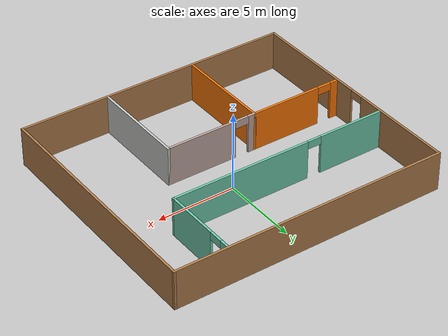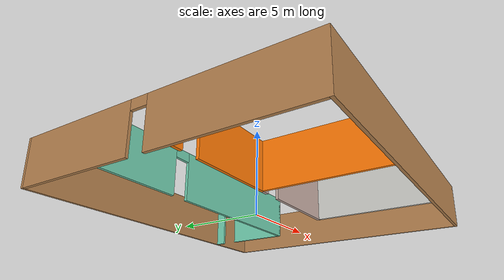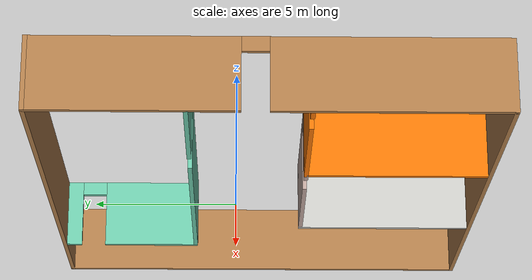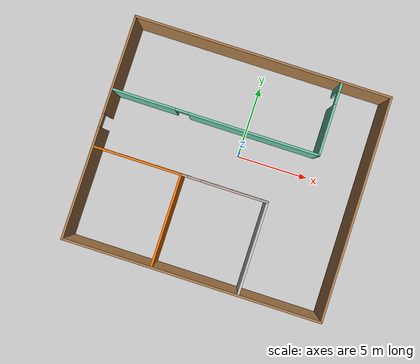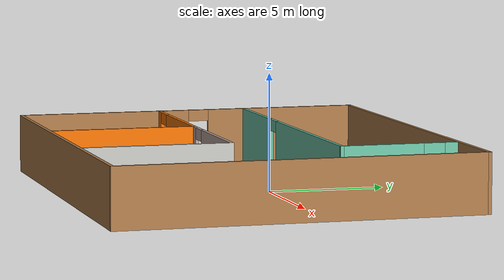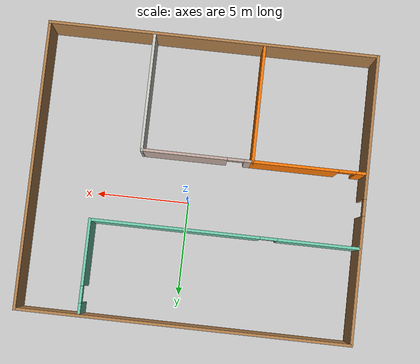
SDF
<?xml version='1.0'?>
<sdf version='1.6'>
  <model name='building'>
    <pose frame=''>-0.446 -1.0545 0 0 -0 0</pose>
    <link name='Wall_42'>
      <pose frame=''>-8.8 0 0 0 0 -1.5708</pose>
      <visual name='Wall_42_Visual_0'>
        <pose frame=''>-4.30585 0 1.25 0 -0 0</pose>
        <geometry>
          <box>
            <size>6.83131 0.15 2.5</size>
          </box>
        </geometry>
        <material>
          <script>
            <uri>file://media/materials/scripts/gazebo.material</uri>
            <name>Gazebo/Wood</name>
          </script>
          <ambient>1 1 1 1</ambient>
        </material>
        <meta>
          <layer>0</layer>
        </meta>
      </visual>
      <collision name='Wall_42_Collision_0'>
        <geometry>
          <box>
            <size>6.83131 0.15 2.5</size>
          </box>
        </geometry>
        <pose frame=''>-4.30585 0 1.25 0 -0 0</pose>
      </collision>
      <visual name='Wall_42_Visual_1'>
        <pose frame=''>3.86565 0 1.25 0 -0 0</pose>
        <geometry>
          <box>
            <size>7.71169 0.15 2.5</size>
          </box>
        </geometry>
        <material>
          <script>
            <uri>file://media/materials/scripts/gazebo.material</uri>
            <name>Gazebo/Wood</name>
          </script>
          <ambient>1 1 1 1</ambient>
        </material>
        <meta>
          <layer>0</layer>
        </meta>
      </visual>
      <collision name='Wall_42_Collision_1'>
        <geometry>
          <box>
            <size>7.71169 0.15 2.5</size>
          </box>
        </geometry>
        <pose frame=''>3.86565 0 1.25 0 -0 0</pose>
      </collision>
      <visual name='Wall_42_Visual_2'>
        <pose frame=''>-0.440192 0 2.25 0 -0 0</pose>
        <geometry>
          <box>
            <size>0.9 0.15 0.5</size>
          </box>
        </geometry>
        <material>
          <script>
            <uri>file://media/materials/scripts/gazebo.material</uri>
            <name>Gazebo/Wood</name>
          </script>
          <ambient>1 1 1 1</ambient>
        </material>
        <meta>
          <layer>0</layer>
        </meta>
      </visual>
      <collision name='Wall_42_Collision_2'>
        <geometry>
          <box>
            <size>0.9 0.15 0.5</size>
          </box>
        </geometry>
        <pose frame=''>-0.440192 0 2.25 0 -0 0</pose>
      </collision>
    </link>
    <link name='Wall_43'>
      <collision name='Wall_43_Collision'>
        <geometry>
          <box>
            <size>17.75 0.15 2.5</size>
          </box>
        </geometry>
        <pose frame=''>0 0 1.25 0 -0 0</pose>
      </collision>
      <visual name='Wall_43_Visual'>
        <pose frame=''>0 0 1.25 0 -0 0</pose>
        <geometry>
          <box>
            <size>17.75 0.15 2.5</size>
          </box>
        </geometry>
        <material>
          <script>
            <uri>file://media/materials/scripts/gazebo.material</uri>
            <name>Gazebo/Wood</name>
          </script>
          <ambient>1 1 1 1</ambient>
        </material>
        <meta>
          <layer>0</layer>
        </meta>
      </visual>
      <pose frame=''>0 -7.6465 0 0 -0 0</pose>
    </link>
    <link name='Wall_44'>
      <collision name='Wall_44_Collision'>
        <geometry>
          <box>
            <size>15.443 0.15 2.5</size>
          </box>
        </geometry>
        <pose frame=''>0 0 1.25 0 -0 0</pose>
      </collision>
      <visual name='Wall_44_Visual'>
        <pose frame=''>0 0 1.25 0 -0 0</pose>
        <geometry>
          <box>
            <size>15.443 0.15 2.5</size>
          </box>
        </geometry>
        <material>
          <script>
            <uri>file://media/materials/scripts/gazebo.material</uri>
            <name>Gazebo/Wood</name>
          </script>
          <ambient>1 1 1 1</ambient>
        </material>
        <meta>
          <layer>0</layer>
        </meta>
      </visual>
      <pose frame=''>8.8 0 0 0 -0 1.5708</pose>
    </link>
    <link name='Wall_45'>
      <collision name='Wall_45_Collision'>
        <geometry>
          <box>
            <size>17.75 0.15 2.5</size>
          </box>
        </geometry>
        <pose frame=''>0 0 1.25 0 -0 0</pose>
      </collision>
      <visual name='Wall_45_Visual'>
        <pose frame=''>0 0 1.25 0 -0 0</pose>
        <geometry>
          <box>
            <size>17.75 0.15 2.5</size>
          </box>
        </geometry>
        <material>
          <script>
            <uri>file://media/materials/scripts/gazebo.material</uri>
            <name>Gazebo/Wood</name>
          </script>
          <ambient>1 1 1 1</ambient>
        </material>
        <meta>
          <layer>0</layer>
        </meta>
      </visual>
      <pose frame=''>0 7.6465 0 0 -0 3.14159</pose>
    </link>
    <link name='Wall_50'>
      <pose frame=''>-1.647 2.6095 0 0 -0 0</pose>
      <visual name='Wall_50_Visual_0'>
        <pose frame=''>-4.97412 0 1.25 0 -0 0</pose>
        <geometry>
          <box>
            <size>4.36782 0.15 2.5</size>
          </box>
        </geometry>
        <material>
          <script>
            <uri>file://media/materials/scripts/gazebo.material</uri>
            <name>Gazebo/Grey</name>
          </script>
          <ambient>0.435294 0.796078 0.67451 1</ambient>
        </material>
        <meta>
          <layer>0</layer>
        </meta>
      </visual>
      <collision name='Wall_50_Collision_0'>
        <geometry>
          <box>
            <size>4.36782 0.15 2.5</size>
          </box>
        </geometry>
        <pose frame=''>-4.97412 0 1.25 0 -0 0</pose>
      </collision>
      <visual name='Wall_50_Visual_1'>
        <pose frame=''>2.63391 0 1.25 0 -0 0</pose>
        <geometry>
          <box>
            <size>9.04824 0.15 2.5</size>
          </box>
        </geometry>
        <material>
          <script>
            <uri>file://media/materials/scripts/gazebo.material</uri>
            <name>Gazebo/Grey</name>
          </script>
          <ambient>0.435294 0.796078 0.67451 1</ambient>
        </material>
        <meta>
          <layer>0</layer>
        </meta>
      </visual>
      <collision name='Wall_50_Collision_1'>
        <geometry>
          <box>
            <size>9.04824 0.15 2.5</size>
          </box>
        </geometry>
        <pose frame=''>2.63391 0 1.25 0 -0 0</pose>
      </collision>
      <visual name='Wall_50_Visual_2'>
        <pose frame=''>-2.34021 0 2.25 0 -0 0</pose>
        <geometry>
          <box>
            <size>0.9 0.15 0.5</size>
          </box>
        </geometry>
        <material>
          <script>
            <uri>file://media/materials/scripts/gazebo.material</uri>
            <name>Gazebo/Grey</name>
          </script>
          <ambient>0.435294 0.796078 0.67451 1</ambient>
        </material>
        <meta>
          <layer>0</layer>
        </meta>
      </visual>
      <collision name='Wall_50_Collision_2'>
        <geometry>
          <box>
            <size>0.9 0.15 0.5</size>
          </box>
        </geometry>
        <pose frame=''>-2.34021 0 2.25 0 -0 0</pose>
      </collision>
    </link>
    <link name='Wall_51'>
      <pose frame=''>5.436 5.052 0 0 -0 1.5708</pose>
      <visual name='Wall_51_Visual_0'>
        <pose frame=''>-0.73569 0 1.25 0 -0 0</pose>
        <geometry>
          <box>
            <size>3.56362 0.15 2.5</size>
          </box>
        </geometry>
        <material>
          <script>
            <uri>file://media/materials/scripts/gazebo.material</uri>
            <name>Gazebo/Grey</name>
          </script>
          <ambient>0.435294 0.796078 0.67451 1</ambient>
        </material>
        <meta>
          <layer>0</layer>
        </meta>
      </visual>
      <collision name='Wall_51_Collision_0'>
        <geometry>
          <box>
            <size>3.56362 0.15 2.5</size>
          </box>
        </geometry>
        <pose frame=''>-0.73569 0 1.25 0 -0 0</pose>
      </collision>
      <visual name='Wall_51_Visual_1'>
        <pose frame=''>2.23181 0 1.25 0 -0 0</pose>
        <geometry>
          <box>
            <size>0.57138 0.15 2.5</size>
          </box>
        </geometry>
        <material>
          <script>
            <uri>file://media/materials/scripts/gazebo.material</uri>
            <name>Gazebo/Grey</name>
          </script>
          <ambient>0.435294 0.796078 0.67451 1</ambient>
        </material>
        <meta>
          <layer>0</layer>
        </meta>
      </visual>
      <collision name='Wall_51_Collision_1'>
        <geometry>
          <box>
            <size>0.57138 0.15 2.5</size>
          </box>
        </geometry>
        <pose frame=''>2.23181 0 1.25 0 -0 0</pose>
      </collision>
      <visual name='Wall_51_Visual_2'>
        <pose frame=''>1.49612 0 2.25 0 -0 0</pose>
        <geometry>
          <box>
            <size>0.9 0.15 0.5</size>
          </box>
        </geometry>
        <material>
          <script>
            <uri>file://media/materials/scripts/gazebo.material</uri>
            <name>Gazebo/Grey</name>
          </script>
          <ambient>0.435294 0.796078 0.67451 1</ambient>
        </material>
        <meta>
          <layer>0</layer>
        </meta>
      </visual>
      <collision name='Wall_51_Collision_2'>
        <geometry>
          <box>
            <size>0.9 0.15 0.5</size>
          </box>
        </geometry>
        <pose frame=''>1.49612 0 2.25 0 -0 0</pose>
      </collision>
    </link>
    <link name='Wall_54'>
      <pose frame=''>-5.695 -1.3425 0 0 -0 0</pose>
      <visual name='Wall_54_Visual_0'>
        <pose frame=''>-2.77183 0 1.25 0 -0 0</pose>
        <geometry>
          <box>
            <size>0.512338 0.15 2.5</size>
          </box>
        </geometry>
        <material>
          <script>
            <uri>file://media/materials/scripts/gazebo.material</uri>
            <name>Gazebo/Grey</name>
          </script>
          <ambient>0.996078 0.47451 0.0196078 1</ambient>
        </material>
        <meta>
          <layer>0</layer>
        </meta>
      </visual>
      <collision name='Wall_54_Collision_0'>
        <geometry>
          <box>
            <size>0.512338 0.15 2.5</size>
          </box>
        </geometry>
        <pose frame=''>-2.77183 0 1.25 0 -0 0</pose>
      </collision>
      <visual name='Wall_54_Visual_1'>
        <pose frame=''>0.706169 0 1.25 0 -0 0</pose>
        <geometry>
          <box>
            <size>4.64366 0.15 2.5</size>
          </box>
        </geometry>
        <material>
          <script>
            <uri>file://media/materials/scripts/gazebo.material</uri>
            <name>Gazebo/Grey</name>
          </script>
          <ambient>0.996078 0.47451 0.0196078 1</ambient>
        </material>
        <meta>
          <layer>0</layer>
        </meta>
      </visual>
      <collision name='Wall_54_Collision_1'>
        <geometry>
          <box>
            <size>4.64366 0.15 2.5</size>
          </box>
        </geometry>
        <pose frame=''>0.706169 0 1.25 0 -0 0</pose>
      </collision>
      <visual name='Wall_54_Visual_2'>
        <pose frame=''>-2.06566 0 2.25 0 -0 0</pose>
        <geometry>
          <box>
            <size>0.9 0.15 0.5</size>
          </box>
        </geometry>
        <material>
          <script>
            <uri>file://media/materials/scripts/gazebo.material</uri>
            <name>Gazebo/Grey</name>
          </script>
          <ambient>0.996078 0.47451 0.0196078 1</ambient>
        </material>
        <meta>
          <layer>0</layer>
        </meta>
      </visual>
      <collision name='Wall_54_Collision_2'>
        <geometry>
          <box>
            <size>0.9 0.15 0.5</size>
          </box>
        </geometry>
        <pose frame=''>-2.06566 0 2.25 0 -0 0</pose>
      </collision>
    </link>
    <link name='Wall_55'>
      <collision name='Wall_55_Collision'>
        <geometry>
          <box>
            <size>6.303 0.15 2.5</size>
          </box>
        </geometry>
        <pose frame=''>0 0 1.25 0 -0 0</pose>
      </collision>
      <visual name='Wall_55_Visual'>
        <pose frame=''>0 0 1.25 0 -0 0</pose>
        <geometry>
          <box>
            <size>6.303 0.15 2.5</size>
          </box>
        </geometry>
        <material>
          <script>
            <uri>file://media/materials/scripts/gazebo.material</uri>
            <name>Gazebo/Grey</name>
          </script>
          <ambient>0.996078 0.47451 0.0196078 1</ambient>
        </material>
        <meta>
          <layer>0</layer>
        </meta>
      </visual>
      <pose frame=''>-2.742 -4.419 0 0 0 -1.5708</pose>
    </link>
    <link name='Wall_58'>
      <pose frame=''>0.211 -1.3425 0 0 -0 0</pose>
      <visual name='Wall_58_Visual_0'>
        <pose frame=''>-2.75873 0 1.25 0 -0 0</pose>
        <geometry>
          <box>
            <size>0.538542 0.15 2.5</size>
          </box>
        </geometry>
        <material>
          <script>
            <uri>file://media/materials/scripts/gazebo.material</uri>
            <name>Gazebo/Grey</name>
          </script>
          <ambient>0.760784 0.662745 0.627451 1</ambient>
        </material>
        <meta>
          <layer>0</layer>
        </meta>
      </visual>
      <collision name='Wall_58_Collision_0'>
        <geometry>
          <box>
            <size>0.538542 0.15 2.5</size>
          </box>
        </geometry>
        <pose frame=''>-2.75873 0 1.25 0 -0 0</pose>
      </collision>
      <visual name='Wall_58_Visual_1'>
        <pose frame=''>0.719271 0 1.25 0 -0 0</pose>
        <geometry>
          <box>
            <size>4.61746 0.15 2.5</size>
          </box>
        </geometry>
        <material>
          <script>
            <uri>file://media/materials/scripts/gazebo.material</uri>
            <name>Gazebo/Grey</name>
          </script>
          <ambient>0.760784 0.662745 0.627451 1</ambient>
        </material>
        <meta>
          <layer>0</layer>
        </meta>
      </visual>
      <collision name='Wall_58_Collision_1'>
        <geometry>
          <box>
            <size>4.61746 0.15 2.5</size>
          </box>
        </geometry>
        <pose frame=''>0.719271 0 1.25 0 -0 0</pose>
      </collision>
      <visual name='Wall_58_Visual_2'>
        <pose frame=''>-2.03946 0 2.25 0 -0 0</pose>
        <geometry>
          <box>
            <size>0.9 0.15 0.5</size>
          </box>
        </geometry>
        <material>
          <script>
            <uri>file://media/materials/scripts/gazebo.material</uri>
            <name>Gazebo/Grey</name>
          </script>
          <ambient>0.760784 0.662745 0.627451 1</ambient>
        </material>
        <meta>
          <layer>0</layer>
        </meta>
      </visual>
      <collision name='Wall_58_Collision_2'>
        <geometry>
          <box>
            <size>0.9 0.15 0.5</size>
          </box>
        </geometry>
        <pose frame=''>-2.03946 0 2.25 0 -0 0</pose>
      </collision>
    </link>
    <link name='Wall_59'>
      <collision name='Wall_59_Collision'>
        <geometry>
          <box>
            <size>6.303 0.15 2.5</size>
          </box>
        </geometry>
        <pose frame=''>0 0 1.25 0 -0 0</pose>
      </collision>
      <visual name='Wall_59_Visual'>
        <pose frame=''>0 0 1.25 0 -0 0</pose>
        <geometry>
          <box>
            <size>6.303 0.15 2.5</size>
          </box>
        </geometry>
        <material>
          <script>
            <uri>file://media/materials/scripts/gazebo.material</uri>
            <name>Gazebo/CeilingTiled</name>
          </script>
          <ambient>1 1 1 1</ambient>
        </material>
        <meta>
          <layer>0</layer>
        </meta>
      </visual>
      <pose frame=''>3.164 -4.419 0 0 0 -1.5708</pose>
    </link>
    <static>1</static>
  </model>
</sdf>
